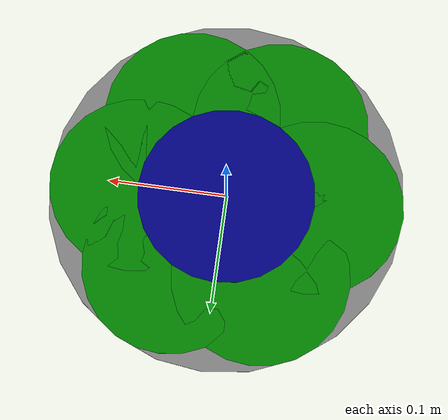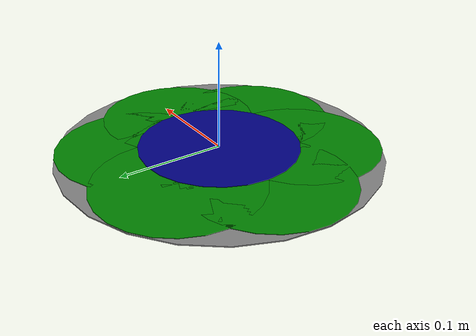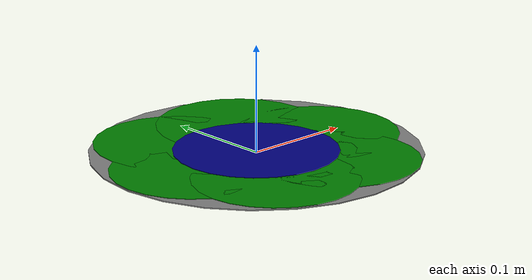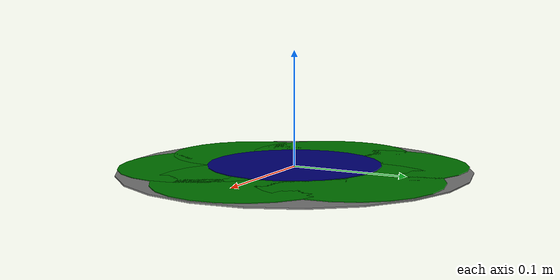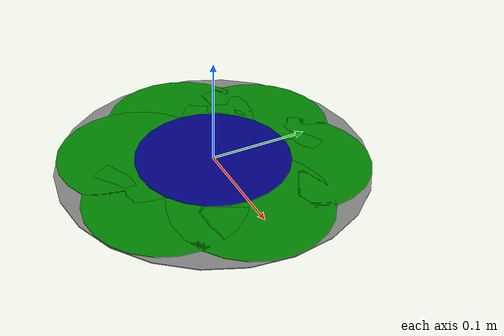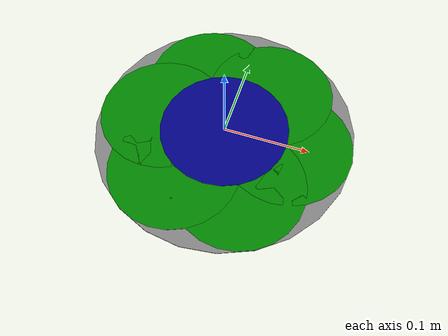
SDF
<?xml version="1.0" ?>
<sdf version="1.6">
  <model name="Rangoli">
    <static>true</static>

    <!-- Outer circle (Base layer) -->
    <link name="outer_circle">
      <visual name="visual">
        <geometry>
          <cylinder>
            <radius>0.15</radius> <!-- Diameter = 300mm -->
            <length>0.001</length> <!-- 1mm thickness -->
          </cylinder>
        </geometry>
        <material>
          <ambient>0.5 0.5 0.5 1</ambient> <!-- Gray color -->
          <diffuse>0.5 0.5 0.5 1</diffuse>
        </material>
      </visual>
    </link>

    <!-- 6 smaller circles around the inner circle -->
    <!-- These circles are placed on the circumference of the inner circle -->
    <!-- Green Circles -->
    <link name="small_circle_1">
      <pose>0.075 0 0.0015 0 0 0</pose> <!-- Adjusted for placement -->
      <visual name="visual">
        <geometry>
          <cylinder>
            <radius>0.075</radius> <!-- Diameter = 150mm -->
            <length>0.0005</length> <!-- 0.5mm extrusion -->
          </cylinder>
        </geometry>
        <material>
          <ambient>0 0.5 0 1</ambient> <!-- Green color -->
          <diffuse>0 0.5 0 1</diffuse>
        </material>
      </visual>
    </link>

    <!-- Similarly, repeat for the other 5 circles, with appropriate positions -->

    <link name="small_circle_2">
      <pose>0.0375 0.065 0.0015 0 0 0</pose> <!-- Adjusted for placement -->
      <visual name="visual">
        <geometry>
          <cylinder>
            <radius>0.075</radius> <!-- Diameter = 150mm -->
            <length>0.0005</length> <!-- 0.5mm extrusion -->
          </cylinder>
        </geometry>
        <material>
          <ambient>0 0.5 0 1</ambient> <!-- Green color -->
          <diffuse>0 0.5 0 1</diffuse>
        </material>
      </visual>
    </link>

    <link name="small_circle_3">
      <pose>-0.0375 0.065 0.0015 0 0 0</pose> <!-- Adjusted for placement -->
      <visual name="visual">
        <geometry>
          <cylinder>
            <radius>0.075</radius> <!-- Diameter = 150mm -->
            <length>0.0005</length> <!-- 0.5mm extrusion -->
          </cylinder>
        </geometry>
        <material>
          <ambient>0 0.5 0 1</ambient> <!-- Green color -->
          <diffuse>0 0.5 0 1</diffuse>
        </material>
      </visual>
    </link>

    <link name="small_circle_4">
      <pose>-0.075 0 0.0015 0 0 0</pose> <!-- Adjusted for placement -->
      <visual name="visual">
        <geometry>
          <cylinder>
            <radius>0.075</radius> <!-- Diameter = 150mm -->
            <length>0.0005</length> <!-- 0.5mm extrusion -->
          </cylinder>
        </geometry>
        <material>
          <ambient>0 0.5 0 1</ambient> <!-- Green color -->
          <diffuse>0 0.5 0 1</diffuse>
        </material>
      </visual>
    </link>

    <link name="small_circle_5">
      <pose>-0.0375 -0.065 0.0015 0 0 0</pose> <!-- Adjusted for placement -->
      <visual name="visual">
        <geometry>
          <cylinder>
            <radius>0.075</radius> <!-- Diameter = 150mm -->
            <length>0.0005</length> <!-- 0.5mm extrusion -->
          </cylinder>
        </geometry>
        <material>
          <ambient>0 0.5 0 1</ambient> <!-- Green color -->
          <diffuse>0 0.5 0 1</diffuse>
        </material>
      </visual>
    </link>

    <link name="small_circle_6">
      <pose>0.0375 -0.065 0.0015 0 0 0</pose> <!-- Adjusted for placement -->
      <visual name="visual">
        <geometry>
          <cylinder>
            <radius>0.075</radius> <!-- Diameter = 150mm -->
            <length>0.0005</length> <!-- 0.5mm extrusion -->
          </cylinder>
        </geometry>
        <material>
          <ambient>0 0.5 0 1</ambient> <!-- Green color -->
          <diffuse>0 0.5 0 1</diffuse>
        </material>
      </visual>
    </link>

    <link name="inner_circle">
      <pose>0 0 0.0025 0 0 0</pose> <!-- Placed 2.5 mm above the base (1mm base + 0.5mm small circles + 1mm additional clearance) -->
      <visual name="visual">
        <geometry>
          <cylinder>
            <radius>0.075</radius> <!-- Diameter = 150mm -->
            <length>0.0005</length> <!-- 0.5mm extrusion -->
          </cylinder>
        </geometry>
        <material>
          <ambient>0 0 0.5 1</ambient> <!-- Blue color -->
          <diffuse>0 0 0.5 1</diffuse>
        </material>
      </visual>
    </link>

    <!-- Add the middle flower-like structure with appropriate poses and colors -->

  </model>
</sdf>
